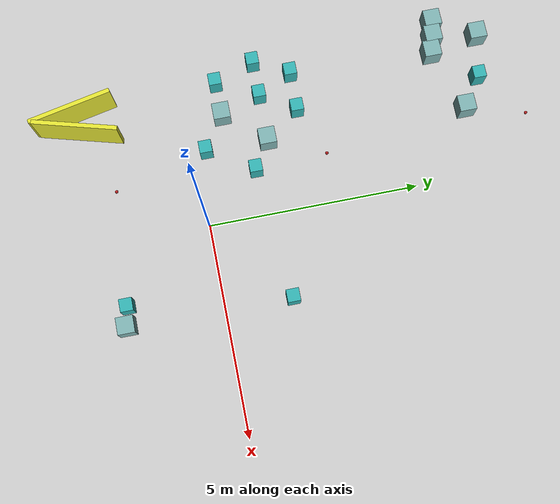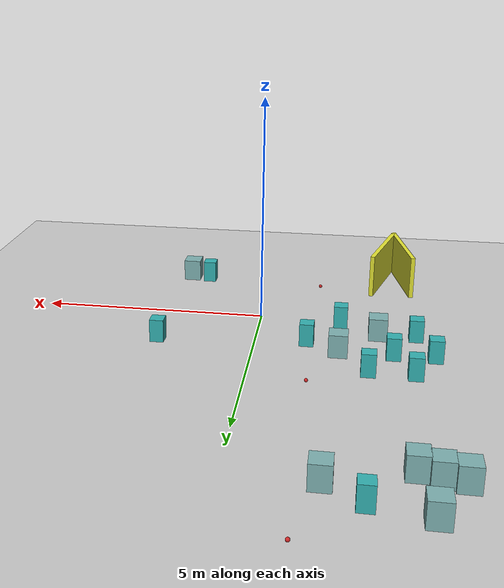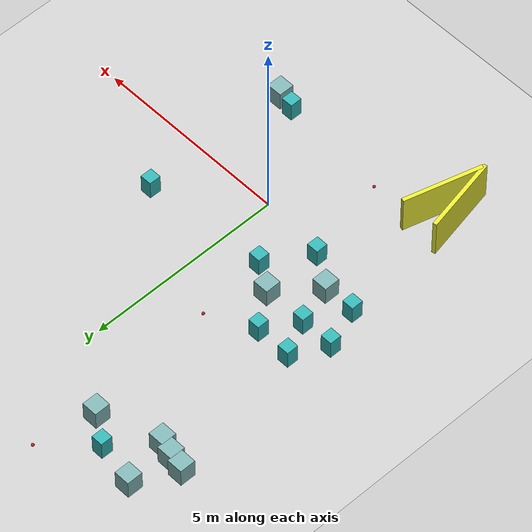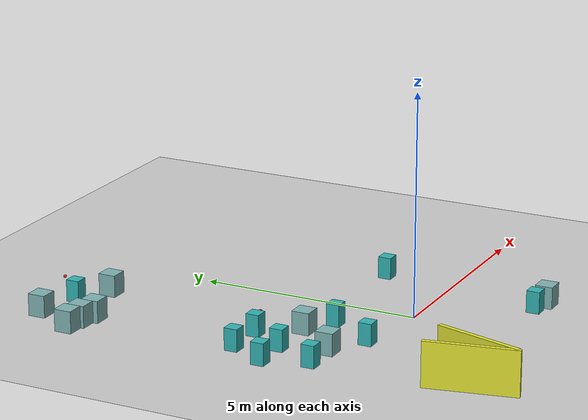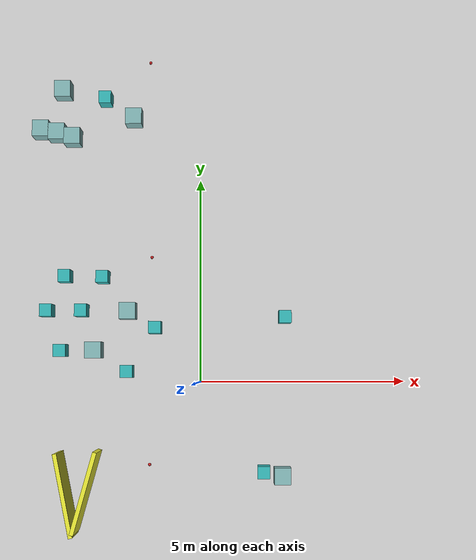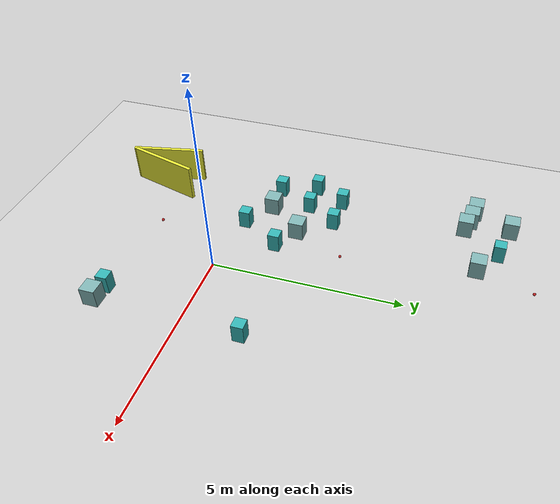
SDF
<sdf version="1.7">
 <world name="default">
  <model name="ground_plane">
   <static>1</static>
   <link name="link">
    <collision name="collision">
     <geometry><plane><normal>0 0 1</normal><size>100 100</size></plane></geometry>
     <surface><friction><ode><mu>100</mu><mu2>50</mu2></ode></friction></surface>
    </collision>
    <visual name="visual">
     <cast_shadows>0</cast_shadows>
     <geometry><plane><normal>0 0 1</normal><size>100 100</size></plane></geometry>
     <material>
      <script><uri>file://media/materials/scripts/gazebo.material</uri><name>Gazebo/Grey</name></script>
     </material>
    </visual>
   </link>
  </model>
  <model name="fl4sr_real_arena_8_target">
   <model name="target_ball_3">
    <link name="link">
     <pose>0 0 0.0375 0 -0 0</pose>
     <inertial>
      <mass>0.1467</mass>
      <inertia>
       <ixx>8.25187e-05</ixx>
       <ixy>0</ixy>
       <ixz>0</ixz>
       <iyy>8.25187e-05</iyy>
       <iyz>0</iyz>
       <izz>8.25187e-05</izz>
      </inertia>
     </inertial>
     <velocity_decay><linear>0</linear><angular>0.005</angular></velocity_decay>
     <visual name="visual">
      <geometry><sphere><radius>0.0375</radius></sphere></geometry>
      <material>
       <script><uri>file://media/materials/scripts/gazebo.material</uri><name>Gazebo/Red</name></script>
       <shader type="pixel"/>
      </material>
     </visual>
     <collision name="collision">
      <geometry><sphere><radius>0.0375</radius></sphere></geometry>
      <surface>
       <friction>
        <ode><mu>1</mu><mu2>1</mu2><fdir1>0 0 0</fdir1><slip1>0</slip1><slip2>0</slip2></ode>
        <torsional>
         <coefficient>1</coefficient>
         <patch_radius>0</patch_radius>
         <surface_radius>0.01</surface_radius>
         <use_patch_radius>0</use_patch_radius>
         <ode><slip>0</slip></ode>
        </torsional>
       </friction>
       <bounce><restitution_coefficient>0</restitution_coefficient><threshold>1e+06</threshold></bounce>
       <contact>
        <collide_without_contact>0</collide_without_contact>
        <collide_without_contact_bitmask>1</collide_without_contact_bitmask>
        <collide_bitmask>1</collide_bitmask>
        <ode>
         <soft_cfm>0</soft_cfm>
         <soft_erp>0.2</soft_erp>
         <kp>100000</kp>
         <kd>100</kd>
         <max_vel>100</max_vel>
         <min_depth>0.001</min_depth>
        </ode>
        <bullet>
         <split_impulse>1</split_impulse>
         <split_impulse_penetration_threshold>-0.01</split_impulse_penetration_threshold>
         <soft_cfm>0</soft_cfm>
         <soft_erp>0.2</soft_erp>
         <kp>100000</kp>
         <kd>100</kd>
        </bullet>
       </contact>
      </surface>
     </collision>
    </link>
    <static>0</static>
    <pose>-2.96569 7.16935 0 0 -0 0</pose>
   </model>
   <model name="target_ball_4">
    <link name="link">
     <pose>0 0 0.0375 0 -0 0</pose>
     <inertial>
      <mass>0.1467</mass>
      <inertia>
       <ixx>8.25187e-05</ixx>
       <ixy>0</ixy>
       <ixz>0</ixz>
       <iyy>8.25187e-05</iyy>
       <iyz>0</iyz>
       <izz>8.25187e-05</izz>
      </inertia>
     </inertial>
     <velocity_decay><linear>0</linear><angular>0.005</angular></velocity_decay>
     <visual name="visual">
      <geometry><sphere><radius>0.0375</radius></sphere></geometry>
      <material>
       <script><uri>file://media/materials/scripts/gazebo.material</uri><name>Gazebo/Red</name></script>
       <shader type="pixel"/>
      </material>
     </visual>
     <collision name="collision">
      <geometry><sphere><radius>0.0375</radius></sphere></geometry>
      <surface>
       <friction>
        <ode><mu>1</mu><mu2>1</mu2><fdir1>0 0 0</fdir1><slip1>0</slip1><slip2>0</slip2></ode>
        <torsional>
         <coefficient>1</coefficient>
         <patch_radius>0</patch_radius>
         <surface_radius>0.01</surface_radius>
         <use_patch_radius>0</use_patch_radius>
         <ode><slip>0</slip></ode>
        </torsional>
       </friction>
       <bounce><restitution_coefficient>0</restitution_coefficient><threshold>1e+06</threshold></bounce>
       <contact>
        <collide_without_contact>0</collide_without_contact>
        <collide_without_contact_bitmask>1</collide_without_contact_bitmask>
        <collide_bitmask>1</collide_bitmask>
        <ode>
         <soft_cfm>0</soft_cfm>
         <soft_erp>0.2</soft_erp>
         <kp>100000</kp>
         <kd>100</kd>
         <max_vel>100</max_vel>
         <min_depth>0.001</min_depth>
        </ode>
        <bullet>
         <split_impulse>1</split_impulse>
         <split_impulse_penetration_threshold>-0.01</split_impulse_penetration_threshold>
         <soft_cfm>0</soft_cfm>
         <soft_erp>0.2</soft_erp>
         <kp>100000</kp>
         <kd>100</kd>
        </bullet>
       </contact>
      </surface>
     </collision>
    </link>
    <static>0</static>
    <pose>-2.9061 2.23917 0 0 -0 0</pose>
   </model>
   <model name="target_ball_5">
    <link name="link">
     <pose>0 0 0.0375 0 -0 0</pose>
     <inertial>
      <mass>0.1467</mass>
      <inertia>
       <ixx>8.25187e-05</ixx>
       <ixy>0</ixy>
       <ixz>0</ixz>
       <iyy>8.25187e-05</iyy>
       <iyz>0</iyz>
       <izz>8.25187e-05</izz>
      </inertia>
     </inertial>
     <velocity_decay><linear>0</linear><angular>0.005</angular></velocity_decay>
     <visual name="visual">
      <geometry><sphere><radius>0.0375</radius></sphere></geometry>
      <material>
       <script><uri>file://media/materials/scripts/gazebo.material</uri><name>Gazebo/Red</name></script>
       <shader type="pixel"/>
      </material>
     </visual>
     <collision name="collision">
      <geometry><sphere><radius>0.0375</radius></sphere></geometry>
      <surface>
       <friction>
        <ode><mu>1</mu><mu2>1</mu2><fdir1>0 0 0</fdir1><slip1>0</slip1><slip2>0</slip2></ode>
        <torsional>
         <coefficient>1</coefficient>
         <patch_radius>0</patch_radius>
         <surface_radius>0.01</surface_radius>
         <use_patch_radius>0</use_patch_radius>
         <ode><slip>0</slip></ode>
        </torsional>
       </friction>
       <bounce><restitution_coefficient>0</restitution_coefficient><threshold>1e+06</threshold></bounce>
       <contact>
        <collide_without_contact>0</collide_without_contact>
        <collide_without_contact_bitmask>1</collide_without_contact_bitmask>
        <collide_bitmask>1</collide_bitmask>
        <ode>
         <soft_cfm>0</soft_cfm>
         <soft_erp>0.2</soft_erp>
         <kp>100000</kp>
         <kd>100</kd>
         <max_vel>100</max_vel>
         <min_depth>0.001</min_depth>
        </ode>
        <bullet>
         <split_impulse>1</split_impulse>
         <split_impulse_penetration_threshold>-0.01</split_impulse_penetration_threshold>
         <soft_cfm>0</soft_cfm>
         <soft_erp>0.2</soft_erp>
         <kp>100000</kp>
         <kd>100</kd>
        </bullet>
       </contact>
      </surface>
     </collision>
    </link>
    <static>0</static>
    <pose>-2.93744 -2.85263 0 0 -0 0</pose>
   </model>
   <static>0</static>
   <pose>1.69407 0.837481 0 0 -0 0</pose>
  </model>
  <model name="unit_box_0.4_clone_2">
   <link name="link">
    <inertial>
     <mass>1</mass>
     <inertia>
      <ixx>0.166667</ixx>
      <ixy>0</ixy>
      <ixz>0</ixz>
      <iyy>0.166667</iyy>
      <iyz>0</iyz>
      <izz>0.166667</izz>
     </inertia>
    </inertial>
    <visual name="visual">
     <geometry><box><size>0.4 0.4 0.5</size></box></geometry>
     <material>
      <script><name>Gazebo/Grey</name><uri>file://media/materials/scripts/gazebo.material</uri></script>
      <shader type="pixel"><normal_map>__default__</normal_map></shader>
      <ambient>0.7 0.8 0.4 1</ambient>
      <diffuse>0.5 0.7 0.7 1</diffuse>
      <specular>0.01 0.01 0.01 1</specular>
      <emissive>0 0 0 1</emissive>
     </material>
    </visual>
    <collision name="collision">
     <geometry><box><size>0.4 0.4 0.5</size></box></geometry>
     <surface>
      <friction>
       <ode><mu>1</mu><mu2>1</mu2><fdir1>0 0 0</fdir1><slip1>0</slip1><slip2>0</slip2></ode>
       <torsional>
        <coefficient>1</coefficient>
        <patch_radius>0</patch_radius>
        <surface_radius>0</surface_radius>
        <use_patch_radius>1</use_patch_radius>
        <ode><slip>0</slip></ode>
       </torsional>
      </friction>
      <bounce><restitution_coefficient>0</restitution_coefficient><threshold>1e+06</threshold></bounce>
      <contact>
       <collide_without_contact>0</collide_without_contact>
       <collide_without_contact_bitmask>1</collide_without_contact_bitmask>
       <collide_bitmask>1</collide_bitmask>
       <ode>
        <soft_cfm>0</soft_cfm>
        <soft_erp>0.2</soft_erp>
        <kp>1e+13</kp>
        <kd>1</kd>
        <max_vel>0.01</max_vel>
        <min_depth>0</min_depth>
       </ode>
       <bullet>
        <split_impulse>1</split_impulse>
        <split_impulse_penetration_threshold>-0.01</split_impulse_penetration_threshold>
        <soft_cfm>0</soft_cfm>
        <soft_erp>0.2</soft_erp>
        <kp>1e+13</kp>
        <kd>1</kd>
       </bullet>
      </contact>
     </surface>
    </collision>
   </link>
   <static>0</static>
   <pose>-1.78118 1.73401 0.25 0 -0 0</pose>
  </model>
  <model name="unit_box_0.4_clone_3">
   <link name="link">
    <inertial>
     <mass>1</mass>
     <inertia>
      <ixx>0.166667</ixx>
      <ixy>0</ixy>
      <ixz>0</ixz>
      <iyy>0.166667</iyy>
      <iyz>0</iyz>
      <izz>0.166667</izz>
     </inertia>
    </inertial>
    <visual name="visual">
     <geometry><box><size>0.4 0.4 0.5</size></box></geometry>
     <material>
      <script><name>Gazebo/Grey</name><uri>file://media/materials/scripts/gazebo.material</uri></script>
      <shader type="pixel"><normal_map>__default__</normal_map></shader>
      <ambient>0.7 0.8 0.4 1</ambient>
      <diffuse>0.5 0.7 0.7 1</diffuse>
      <specular>0.01 0.01 0.01 1</specular>
      <emissive>0 0 0 1</emissive>
     </material>
    </visual>
    <collision name="collision">
     <geometry><box><size>0.4 0.4 0.5</size></box></geometry>
     <surface>
      <friction>
       <ode><mu>1</mu><mu2>1</mu2><fdir1>0 0 0</fdir1><slip1>0</slip1><slip2>0</slip2></ode>
       <torsional>
        <coefficient>1</coefficient>
        <patch_radius>0</patch_radius>
        <surface_radius>0</surface_radius>
        <use_patch_radius>1</use_patch_radius>
        <ode><slip>0</slip></ode>
       </torsional>
      </friction>
      <bounce><restitution_coefficient>0</restitution_coefficient><threshold>1e+06</threshold></bounce>
      <contact>
       <collide_without_contact>0</collide_without_contact>
       <collide_without_contact_bitmask>1</collide_without_contact_bitmask>
       <collide_bitmask>1</collide_bitmask>
       <ode>
        <soft_cfm>0</soft_cfm>
        <soft_erp>0.2</soft_erp>
        <kp>1e+13</kp>
        <kd>1</kd>
        <max_vel>0.01</max_vel>
        <min_depth>0</min_depth>
       </ode>
       <bullet>
        <split_impulse>1</split_impulse>
        <split_impulse_penetration_threshold>-0.01</split_impulse_penetration_threshold>
        <soft_cfm>0</soft_cfm>
        <soft_erp>0.2</soft_erp>
        <kp>1e+13</kp>
        <kd>1</kd>
       </bullet>
      </contact>
     </surface>
    </collision>
   </link>
   <static>0</static>
   <pose>-2.60381 0.777397 0.25 0 -0 0</pose>
  </model>
  <model name="unit_box_0.3_0_clone_0">
   <model name="unit_box_0.3">
    <link name="link">
     <inertial>
      <mass>1</mass>
      <inertia>
       <ixx>0.166667</ixx>
       <ixy>0</ixy>
       <ixz>0</ixz>
       <iyy>0.166667</iyy>
       <iyz>0</iyz>
       <izz>0.166667</izz>
      </inertia>
     </inertial>
     <visual name="visual">
      <geometry><box><size>0.3 0.3 0.5</size></box></geometry>
      <material>
       <script><name>Gazebo/Grey</name><uri>file://media/materials/scripts/gazebo.material</uri></script>
       <shader type="pixel"><normal_map>__default__</normal_map></shader>
       <ambient>0.2 0.7 0.7 1</ambient>
       <diffuse>0.7 0.7 0.7 1</diffuse>
       <specular>0.01 0.01 0.01 1</specular>
       <emissive>0 0 0 1</emissive>
      </material>
     </visual>
     <collision name="collision">
      <geometry><box><size>0.3 0.3 0.5</size></box></geometry>
      <surface>
       <friction>
        <ode><mu>1</mu><mu2>1</mu2><fdir1>0 0 0</fdir1><slip1>0</slip1><slip2>0</slip2></ode>
        <torsional>
         <coefficient>1</coefficient>
         <patch_radius>0</patch_radius>
         <surface_radius>0</surface_radius>
         <use_patch_radius>1</use_patch_radius>
         <ode><slip>0</slip></ode>
        </torsional>
       </friction>
       <bounce><restitution_coefficient>0</restitution_coefficient><threshold>1e+06</threshold></bounce>
       <contact>
        <collide_without_contact>0</collide_without_contact>
        <collide_without_contact_bitmask>1</collide_without_contact_bitmask>
        <collide_bitmask>1</collide_bitmask>
        <ode>
         <soft_cfm>0</soft_cfm>
         <soft_erp>0.2</soft_erp>
         <kp>1e+13</kp>
         <kd>1</kd>
         <max_vel>0.01</max_vel>
         <min_depth>0</min_depth>
        </ode>
        <bullet>
         <split_impulse>1</split_impulse>
         <split_impulse_penetration_threshold>-0.01</split_impulse_penetration_threshold>
         <soft_cfm>0</soft_cfm>
         <soft_erp>0.2</soft_erp>
         <kp>1e+13</kp>
         <kd>1</kd>
        </bullet>
       </contact>
      </surface>
     </collision>
    </link>
    <static>0</static>
    <pose>1e-06 2e-06 0 0 -0 0</pose>
   </model>
   <static>1</static>
   <pose>2.06724 1.58536 0.25 -0 -0 -1e-06</pose>
  </model>
  <model name="unit_box_0.4_1">
   <model name="unit_box_0.4">
    <link name="link">
     <inertial>
      <mass>1</mass>
      <inertia>
       <ixx>0.166667</ixx>
       <ixy>0</ixy>
       <ixz>0</ixz>
       <iyy>0.166667</iyy>
       <iyz>0</iyz>
       <izz>0.166667</izz>
      </inertia>
     </inertial>
     <visual name="visual">
      <geometry><box><size>0.4 0.4 0.5</size></box></geometry>
      <material>
       <script><name>Gazebo/Grey</name><uri>file://media/materials/scripts/gazebo.material</uri></script>
       <shader type="pixel"><normal_map>__default__</normal_map></shader>
       <ambient>0.7 0.8 0.4 1</ambient>
       <diffuse>0.5 0.7 0.7 1</diffuse>
       <specular>0.01 0.01 0.01 1</specular>
       <emissive>0 0 0 1</emissive>
      </material>
     </visual>
     <collision name="collision">
      <geometry><box><size>0.4 0.4 0.5</size></box></geometry>
      <surface>
       <friction>
        <ode><mu>1</mu><mu2>1</mu2><fdir1>0 0 0</fdir1><slip1>0</slip1><slip2>0</slip2></ode>
        <torsional>
         <coefficient>1</coefficient>
         <patch_radius>0</patch_radius>
         <surface_radius>0</surface_radius>
         <use_patch_radius>1</use_patch_radius>
         <ode><slip>0</slip></ode>
        </torsional>
       </friction>
       <bounce><restitution_coefficient>0</restitution_coefficient><threshold>1e+06</threshold></bounce>
       <contact>
        <collide_without_contact>0</collide_without_contact>
        <collide_without_contact_bitmask>1</collide_without_contact_bitmask>
        <collide_bitmask>1</collide_bitmask>
        <ode>
         <soft_cfm>0</soft_cfm>
         <soft_erp>0.2</soft_erp>
         <kp>1e+13</kp>
         <kd>1</kd>
         <max_vel>0.01</max_vel>
         <min_depth>0</min_depth>
        </ode>
        <bullet>
         <split_impulse>1</split_impulse>
         <split_impulse_penetration_threshold>-0.01</split_impulse_penetration_threshold>
         <soft_cfm>0</soft_cfm>
         <soft_erp>0.2</soft_erp>
         <kp>1e+13</kp>
         <kd>1</kd>
        </bullet>
       </contact>
      </surface>
     </collision>
    </link>
    <static>0</static>
    <pose>-3e-06 2.5e-05 0 0 -0 0</pose>
   </model>
   <static>1</static>
   <pose>1.99158 -2.26116 0.25 0 -0 0</pose>
  </model>
  <model name="unit_box_0.3_0_clone_1">
   <model name="unit_box_0.3">
    <link name="link">
     <inertial>
      <mass>1</mass>
      <inertia>
       <ixx>0.166667</ixx>
       <ixy>0</ixy>
       <ixz>0</ixz>
       <iyy>0.166667</iyy>
       <iyz>0</iyz>
       <izz>0.166667</izz>
      </inertia>
     </inertial>
     <visual name="visual">
      <geometry><box><size>0.3 0.3 0.5</size></box></geometry>
      <material>
       <script><name>Gazebo/Grey</name><uri>file://media/materials/scripts/gazebo.material</uri></script>
       <shader type="pixel"><normal_map>__default__</normal_map></shader>
       <ambient>0.2 0.7 0.7 1</ambient>
       <diffuse>0.7 0.7 0.7 1</diffuse>
       <specular>0.01 0.01 0.01 1</specular>
       <emissive>0 0 0 1</emissive>
      </material>
     </visual>
     <collision name="collision">
      <geometry><box><size>0.3 0.3 0.5</size></box></geometry>
      <surface>
       <friction>
        <ode><mu>1</mu><mu2>1</mu2><fdir1>0 0 0</fdir1><slip1>0</slip1><slip2>0</slip2></ode>
        <torsional>
         <coefficient>1</coefficient>
         <patch_radius>0</patch_radius>
         <surface_radius>0</surface_radius>
         <use_patch_radius>1</use_patch_radius>
         <ode><slip>0</slip></ode>
        </torsional>
       </friction>
       <bounce><restitution_coefficient>0</restitution_coefficient><threshold>1e+06</threshold></bounce>
       <contact>
        <collide_without_contact>0</collide_without_contact>
        <collide_without_contact_bitmask>1</collide_without_contact_bitmask>
        <collide_bitmask>1</collide_bitmask>
        <ode>
         <soft_cfm>0</soft_cfm>
         <soft_erp>0.2</soft_erp>
         <kp>1e+13</kp>
         <kd>1</kd>
         <max_vel>0.01</max_vel>
         <min_depth>0</min_depth>
        </ode>
        <bullet>
         <split_impulse>1</split_impulse>
         <split_impulse_penetration_threshold>-0.01</split_impulse_penetration_threshold>
         <soft_cfm>0</soft_cfm>
         <soft_erp>0.2</soft_erp>
         <kp>1e+13</kp>
         <kd>1</kd>
        </bullet>
       </contact>
      </surface>
     </collision>
    </link>
    <static>0</static>
    <pose>1e-06 2e-06 0 0 -0 0</pose>
   </model>
   <static>1</static>
   <pose>1.54278 -2.17136 0.25 -0 -0 -1e-06</pose>
  </model>
  <model name="unit_box_0.3_0_clone_0_clone">
   <model name="unit_box_0.3">
    <link name="link">
     <inertial>
      <mass>1</mass>
      <inertia>
       <ixx>0.166667</ixx>
       <ixy>0</ixy>
       <ixz>0</ixz>
       <iyy>0.166667</iyy>
       <iyz>0</iyz>
       <izz>0.166667</izz>
      </inertia>
     </inertial>
     <visual name="visual">
      <geometry><box><size>0.3 0.3 0.5</size></box></geometry>
      <material>
       <script><name>Gazebo/Grey</name><uri>file://media/materials/scripts/gazebo.material</uri></script>
       <shader type="pixel"><normal_map>__default__</normal_map></shader>
       <ambient>0.2 0.7 0.7 1</ambient>
       <diffuse>0.7 0.7 0.7 1</diffuse>
       <specular>0.01 0.01 0.01 1</specular>
       <emissive>0 0 0 1</emissive>
      </material>
     </visual>
     <collision name="collision">
      <geometry><box><size>0.3 0.3 0.5</size></box></geometry>
      <surface>
       <friction>
        <ode><mu>1</mu><mu2>1</mu2><fdir1>0 0 0</fdir1><slip1>0</slip1><slip2>0</slip2></ode>
        <torsional>
         <coefficient>1</coefficient>
         <patch_radius>0</patch_radius>
         <surface_radius>0</surface_radius>
         <use_patch_radius>1</use_patch_radius>
         <ode><slip>0</slip></ode>
        </torsional>
       </friction>
       <bounce><restitution_coefficient>0</restitution_coefficient><threshold>1e+06</threshold></bounce>
       <contact>
        <collide_without_contact>0</collide_without_contact>
        <collide_without_contact_bitmask>1</collide_without_contact_bitmask>
        <collide_bitmask>1</collide_bitmask>
        <ode>
         <soft_cfm>0</soft_cfm>
         <soft_erp>0.2</soft_erp>
         <kp>1e+13</kp>
         <kd>1</kd>
         <max_vel>0.01</max_vel>
         <min_depth>0</min_depth>
        </ode>
        <bullet>
         <split_impulse>1</split_impulse>
         <split_impulse_penetration_threshold>-0.01</split_impulse_penetration_threshold>
         <soft_cfm>0</soft_cfm>
         <soft_erp>0.2</soft_erp>
         <kp>1e+13</kp>
         <kd>1</kd>
        </bullet>
       </contact>
      </surface>
     </collision>
    </link>
    <static>0</static>
    <pose>1e-06 2e-06 0 0 -0 0</pose>
   </model>
   <static>1</static>
   <pose>-2.36321 7.02551 0.25 0 0 -1e-06</pose>
  </model>
  <model name="unit_box_0.4_1_clone_0_clone">
   <model name="unit_box_0.4">
    <link name="link">
     <inertial>
      <mass>1</mass>
      <inertia>
       <ixx>0.166667</ixx>
       <ixy>0</ixy>
       <ixz>0</ixz>
       <iyy>0.166667</iyy>
       <iyz>0</iyz>
       <izz>0.166667</izz>
      </inertia>
     </inertial>
     <visual name="visual">
      <geometry><box><size>0.4 0.4 0.5</size></box></geometry>
      <material>
       <script><name>Gazebo/Grey</name><uri>file://media/materials/scripts/gazebo.material</uri></script>
       <shader type="pixel"><normal_map>__default__</normal_map></shader>
       <ambient>0.7 0.8 0.4 1</ambient>
       <diffuse>0.5 0.7 0.7 1</diffuse>
       <specular>0.01 0.01 0.01 1</specular>
       <emissive>0 0 0 1</emissive>
      </material>
     </visual>
     <collision name="collision">
      <geometry><box><size>0.4 0.4 0.5</size></box></geometry>
      <surface>
       <friction>
        <ode><mu>1</mu><mu2>1</mu2><fdir1>0 0 0</fdir1><slip1>0</slip1><slip2>0</slip2></ode>
        <torsional>
         <coefficient>1</coefficient>
         <patch_radius>0</patch_radius>
         <surface_radius>0</surface_radius>
         <use_patch_radius>1</use_patch_radius>
         <ode><slip>0</slip></ode>
        </torsional>
       </friction>
       <bounce><restitution_coefficient>0</restitution_coefficient><threshold>1e+06</threshold></bounce>
       <contact>
        <collide_without_contact>0</collide_without_contact>
        <collide_without_contact_bitmask>1</collide_without_contact_bitmask>
        <collide_bitmask>1</collide_bitmask>
        <ode>
         <soft_cfm>0</soft_cfm>
         <soft_erp>0.2</soft_erp>
         <kp>1e+13</kp>
         <kd>1</kd>
         <max_vel>0.01</max_vel>
         <min_depth>0</min_depth>
        </ode>
        <bullet>
         <split_impulse>1</split_impulse>
         <split_impulse_penetration_threshold>-0.01</split_impulse_penetration_threshold>
         <soft_cfm>0</soft_cfm>
         <soft_erp>0.2</soft_erp>
         <kp>1e+13</kp>
         <kd>1</kd>
        </bullet>
       </contact>
      </surface>
     </collision>
    </link>
    <static>0</static>
    <pose>-3e-06 2.5e-05 0 0 -0 0</pose>
   </model>
   <static>1</static>
   <pose>-3.95099 6.24383 0.25 0 -0 0</pose>
  </model>
  <model name="unit_box_0.4_1_clone_0_clone_0">
   <model name="unit_box_0.4">
    <link name="link">
     <inertial>
      <mass>1</mass>
      <inertia>
       <ixx>0.166667</ixx>
       <ixy>0</ixy>
       <ixz>0</ixz>
       <iyy>0.166667</iyy>
       <iyz>0</iyz>
       <izz>0.166667</izz>
      </inertia>
     </inertial>
     <visual name="visual">
      <geometry><box><size>0.4 0.4 0.5</size></box></geometry>
      <material>
       <script><name>Gazebo/Grey</name><uri>file://media/materials/scripts/gazebo.material</uri></script>
       <shader type="pixel"><normal_map>__default__</normal_map></shader>
       <ambient>0.7 0.8 0.4 1</ambient>
       <diffuse>0.5 0.7 0.7 1</diffuse>
       <specular>0.01 0.01 0.01 1</specular>
       <emissive>0 0 0 1</emissive>
      </material>
     </visual>
     <collision name="collision">
      <geometry><box><size>0.4 0.4 0.5</size></box></geometry>
      <surface>
       <friction>
        <ode><mu>1</mu><mu2>1</mu2><fdir1>0 0 0</fdir1><slip1>0</slip1><slip2>0</slip2></ode>
        <torsional>
         <coefficient>1</coefficient>
         <patch_radius>0</patch_radius>
         <surface_radius>0</surface_radius>
         <use_patch_radius>1</use_patch_radius>
         <ode><slip>0</slip></ode>
        </torsional>
       </friction>
       <bounce><restitution_coefficient>0</restitution_coefficient><threshold>1e+06</threshold></bounce>
       <contact>
        <collide_without_contact>0</collide_without_contact>
        <collide_without_contact_bitmask>1</collide_without_contact_bitmask>
        <collide_bitmask>1</collide_bitmask>
        <ode>
         <soft_cfm>0</soft_cfm>
         <soft_erp>0.2</soft_erp>
         <kp>1e+13</kp>
         <kd>1</kd>
         <max_vel>0.01</max_vel>
         <min_depth>0</min_depth>
        </ode>
        <bullet>
         <split_impulse>1</split_impulse>
         <split_impulse_penetration_threshold>-0.01</split_impulse_penetration_threshold>
         <soft_cfm>0</soft_cfm>
         <soft_erp>0.2</soft_erp>
         <kp>1e+13</kp>
         <kd>1</kd>
        </bullet>
       </contact>
      </surface>
     </collision>
    </link>
    <static>0</static>
    <pose>-3e-06 2.5e-05 0 0 -0 0</pose>
   </model>
   <static>1</static>
   <pose>-3.56018 6.17058 0.25 -0 -0 -0</pose>
  </model>
  <model name="unit_box_0.4_1_clone_0_clone_1">
   <model name="unit_box_0.4">
    <link name="link">
     <inertial>
      <mass>1</mass>
      <inertia>
       <ixx>0.166667</ixx>
       <ixy>0</ixy>
       <ixz>0</ixz>
       <iyy>0.166667</iyy>
       <iyz>0</iyz>
       <izz>0.166667</izz>
      </inertia>
     </inertial>
     <visual name="visual">
      <geometry><box><size>0.4 0.4 0.5</size></box></geometry>
      <material>
       <script><name>Gazebo/Grey</name><uri>file://media/materials/scripts/gazebo.material</uri></script>
       <shader type="pixel"><normal_map>__default__</normal_map></shader>
       <ambient>0.7 0.8 0.4 1</ambient>
       <diffuse>0.5 0.7 0.7 1</diffuse>
       <specular>0.01 0.01 0.01 1</specular>
       <emissive>0 0 0 1</emissive>
      </material>
     </visual>
     <collision name="collision">
      <geometry><box><size>0.4 0.4 0.5</size></box></geometry>
      <surface>
       <friction>
        <ode><mu>1</mu><mu2>1</mu2><fdir1>0 0 0</fdir1><slip1>0</slip1><slip2>0</slip2></ode>
        <torsional>
         <coefficient>1</coefficient>
         <patch_radius>0</patch_radius>
         <surface_radius>0</surface_radius>
         <use_patch_radius>1</use_patch_radius>
         <ode><slip>0</slip></ode>
        </torsional>
       </friction>
       <bounce><restitution_coefficient>0</restitution_coefficient><threshold>1e+06</threshold></bounce>
       <contact>
        <collide_without_contact>0</collide_without_contact>
        <collide_without_contact_bitmask>1</collide_without_contact_bitmask>
        <collide_bitmask>1</collide_bitmask>
        <ode>
         <soft_cfm>0</soft_cfm>
         <soft_erp>0.2</soft_erp>
         <kp>1e+13</kp>
         <kd>1</kd>
         <max_vel>0.01</max_vel>
         <min_depth>0</min_depth>
        </ode>
        <bullet>
         <split_impulse>1</split_impulse>
         <split_impulse_penetration_threshold>-0.01</split_impulse_penetration_threshold>
         <soft_cfm>0</soft_cfm>
         <soft_erp>0.2</soft_erp>
         <kp>1e+13</kp>
         <kd>1</kd>
        </bullet>
       </contact>
      </surface>
     </collision>
    </link>
    <static>0</static>
    <pose>-3e-06 2.5e-05 0 0 -0 0</pose>
   </model>
   <static>1</static>
   <pose>-3.17293 6.05879 0.25 -0 -0 -0</pose>
  </model>
  <model name="unit_box_0.4_1_clone_0_clone_2">
   <model name="unit_box_0.4">
    <link name="link">
     <inertial>
      <mass>1</mass>
      <inertia>
       <ixx>0.166667</ixx>
       <ixy>0</ixy>
       <ixz>0</ixz>
       <iyy>0.166667</iyy>
       <iyz>0</iyz>
       <izz>0.166667</izz>
      </inertia>
     </inertial>
     <visual name="visual">
      <geometry><box><size>0.4 0.4 0.5</size></box></geometry>
      <material>
       <script><name>Gazebo/Grey</name><uri>file://media/materials/scripts/gazebo.material</uri></script>
       <shader type="pixel"><normal_map>__default__</normal_map></shader>
       <ambient>0.7 0.8 0.4 1</ambient>
       <diffuse>0.5 0.7 0.7 1</diffuse>
       <specular>0.01 0.01 0.01 1</specular>
       <emissive>0 0 0 1</emissive>
      </material>
     </visual>
     <collision name="collision">
      <geometry><box><size>0.4 0.4 0.5</size></box></geometry>
      <surface>
       <friction>
        <ode><mu>1</mu><mu2>1</mu2><fdir1>0 0 0</fdir1><slip1>0</slip1><slip2>0</slip2></ode>
        <torsional>
         <coefficient>1</coefficient>
         <patch_radius>0</patch_radius>
         <surface_radius>0</surface_radius>
         <use_patch_radius>1</use_patch_radius>
         <ode><slip>0</slip></ode>
        </torsional>
       </friction>
       <bounce><restitution_coefficient>0</restitution_coefficient><threshold>1e+06</threshold></bounce>
       <contact>
        <collide_without_contact>0</collide_without_contact>
        <collide_without_contact_bitmask>1</collide_without_contact_bitmask>
        <collide_bitmask>1</collide_bitmask>
        <ode>
         <soft_cfm>0</soft_cfm>
         <soft_erp>0.2</soft_erp>
         <kp>1e+13</kp>
         <kd>1</kd>
         <max_vel>0.01</max_vel>
         <min_depth>0</min_depth>
        </ode>
        <bullet>
         <split_impulse>1</split_impulse>
         <split_impulse_penetration_threshold>-0.01</split_impulse_penetration_threshold>
         <soft_cfm>0</soft_cfm>
         <soft_erp>0.2</soft_erp>
         <kp>1e+13</kp>
         <kd>1</kd>
        </bullet>
       </contact>
      </surface>
     </collision>
    </link>
    <static>0</static>
    <pose>-3e-06 2.5e-05 0 0 -0 0</pose>
   </model>
   <static>1</static>
   <pose>-1.65683 6.54924 0.25 -0 -0 -0</pose>
  </model>
  <model name="unit_box_0.4_1_clone_0_clone_3">
   <model name="unit_box_0.4">
    <link name="link">
     <inertial>
      <mass>1</mass>
      <inertia>
       <ixx>0.166667</ixx>
       <ixy>0</ixy>
       <ixz>0</ixz>
       <iyy>0.166667</iyy>
       <iyz>0</iyz>
       <izz>0.166667</izz>
      </inertia>
     </inertial>
     <visual name="visual">
      <geometry><box><size>0.4 0.4 0.5</size></box></geometry>
      <material>
       <script><name>Gazebo/Grey</name><uri>file://media/materials/scripts/gazebo.material</uri></script>
       <shader type="pixel"><normal_map>__default__</normal_map></shader>
       <ambient>0.7 0.8 0.4 1</ambient>
       <diffuse>0.5 0.7 0.7 1</diffuse>
       <specular>0.01 0.01 0.01 1</specular>
       <emissive>0 0 0 1</emissive>
      </material>
     </visual>
     <collision name="collision">
      <geometry><box><size>0.4 0.4 0.5</size></box></geometry>
      <surface>
       <friction>
        <ode><mu>1</mu><mu2>1</mu2><fdir1>0 0 0</fdir1><slip1>0</slip1><slip2>0</slip2></ode>
        <torsional>
         <coefficient>1</coefficient>
         <patch_radius>0</patch_radius>
         <surface_radius>0</surface_radius>
         <use_patch_radius>1</use_patch_radius>
         <ode><slip>0</slip></ode>
        </torsional>
       </friction>
       <bounce><restitution_coefficient>0</restitution_coefficient><threshold>1e+06</threshold></bounce>
       <contact>
        <collide_without_contact>0</collide_without_contact>
        <collide_without_contact_bitmask>1</collide_without_contact_bitmask>
        <collide_bitmask>1</collide_bitmask>
        <ode>
         <soft_cfm>0</soft_cfm>
         <soft_erp>0.2</soft_erp>
         <kp>1e+13</kp>
         <kd>1</kd>
         <max_vel>0.01</max_vel>
         <min_depth>0</min_depth>
        </ode>
        <bullet>
         <split_impulse>1</split_impulse>
         <split_impulse_penetration_threshold>-0.01</split_impulse_penetration_threshold>
         <soft_cfm>0</soft_cfm>
         <soft_erp>0.2</soft_erp>
         <kp>1e+13</kp>
         <kd>1</kd>
        </bullet>
       </contact>
      </surface>
     </collision>
    </link>
    <static>0</static>
    <pose>-3e-06 2.5e-05 0 0 -0 0</pose>
   </model>
   <static>1</static>
   <pose>-3.4182 7.2404 0.25 -0 -0 -0</pose>
  </model>
  <model name="unit_box_0.3_0_clone_0_clone_clone">
   <model name="unit_box_0.3">
    <link name="link">
     <inertial>
      <mass>1</mass>
      <inertia>
       <ixx>0.166667</ixx>
       <ixy>0</ixy>
       <ixz>0</ixz>
       <iyy>0.166667</iyy>
       <iyz>0</iyz>
       <izz>0.166667</izz>
      </inertia>
     </inertial>
     <visual name="visual">
      <geometry><box><size>0.3 0.3 0.5</size></box></geometry>
      <material>
       <script><name>Gazebo/Grey</name><uri>file://media/materials/scripts/gazebo.material</uri></script>
       <shader type="pixel"><normal_map>__default__</normal_map></shader>
       <ambient>0.2 0.7 0.7 1</ambient>
       <diffuse>0.7 0.7 0.7 1</diffuse>
       <specular>0.01 0.01 0.01 1</specular>
       <emissive>0 0 0 1</emissive>
      </material>
     </visual>
     <collision name="collision">
      <geometry><box><size>0.3 0.3 0.5</size></box></geometry>
      <surface>
       <friction>
        <ode><mu>1</mu><mu2>1</mu2><fdir1>0 0 0</fdir1><slip1>0</slip1><slip2>0</slip2></ode>
        <torsional>
         <coefficient>1</coefficient>
         <patch_radius>0</patch_radius>
         <surface_radius>0</surface_radius>
         <use_patch_radius>1</use_patch_radius>
         <ode><slip>0</slip></ode>
        </torsional>
       </friction>
       <bounce><restitution_coefficient>0</restitution_coefficient><threshold>1e+06</threshold></bounce>
       <contact>
        <collide_without_contact>0</collide_without_contact>
        <collide_without_contact_bitmask>1</collide_without_contact_bitmask>
        <collide_bitmask>1</collide_bitmask>
        <ode>
         <soft_cfm>0</soft_cfm>
         <soft_erp>0.2</soft_erp>
         <kp>1e+13</kp>
         <kd>1</kd>
         <max_vel>0.01</max_vel>
         <min_depth>0</min_depth>
        </ode>
        <bullet>
         <split_impulse>1</split_impulse>
         <split_impulse_penetration_threshold>-0.01</split_impulse_penetration_threshold>
         <soft_cfm>0</soft_cfm>
         <soft_erp>0.2</soft_erp>
         <kp>1e+13</kp>
         <kd>1</kd>
        </bullet>
       </contact>
      </surface>
     </collision>
    </link>
    <static>0</static>
    <pose>1e-06 2e-06 0 0 -0 0</pose>
   </model>
   <static>1</static>
   <pose>-2.91469 1.74987 0.25 0 0 -1e-06</pose>
  </model>
  <model name="unit_box_0.3_0_clone_0_clone_clone_0">
   <model name="unit_box_0.3">
    <link name="link">
     <inertial>
      <mass>1</mass>
      <inertia>
       <ixx>0.166667</ixx>
       <ixy>0</ixy>
       <ixz>0</ixz>
       <iyy>0.166667</iyy>
       <iyz>0</iyz>
       <izz>0.166667</izz>
      </inertia>
     </inertial>
     <visual name="visual">
      <geometry><box><size>0.3 0.3 0.5</size></box></geometry>
      <material>
       <script><name>Gazebo/Grey</name><uri>file://media/materials/scripts/gazebo.material</uri></script>
       <shader type="pixel"><normal_map>__default__</normal_map></shader>
       <ambient>0.2 0.7 0.7 1</ambient>
       <diffuse>0.7 0.7 0.7 1</diffuse>
       <specular>0.01 0.01 0.01 1</specular>
       <emissive>0 0 0 1</emissive>
      </material>
     </visual>
     <collision name="collision">
      <geometry><box><size>0.3 0.3 0.5</size></box></geometry>
      <surface>
       <friction>
        <ode><mu>1</mu><mu2>1</mu2><fdir1>0 0 0</fdir1><slip1>0</slip1><slip2>0</slip2></ode>
        <torsional>
         <coefficient>1</coefficient>
         <patch_radius>0</patch_radius>
         <surface_radius>0</surface_radius>
         <use_patch_radius>1</use_patch_radius>
         <ode><slip>0</slip></ode>
        </torsional>
       </friction>
       <bounce><restitution_coefficient>0</restitution_coefficient><threshold>1e+06</threshold></bounce>
       <contact>
        <collide_without_contact>0</collide_without_contact>
        <collide_without_contact_bitmask>1</collide_without_contact_bitmask>
        <collide_bitmask>1</collide_bitmask>
        <ode>
         <soft_cfm>0</soft_cfm>
         <soft_erp>0.2</soft_erp>
         <kp>1e+13</kp>
         <kd>1</kd>
         <max_vel>0.01</max_vel>
         <min_depth>0</min_depth>
        </ode>
        <bullet>
         <split_impulse>1</split_impulse>
         <split_impulse_penetration_threshold>-0.01</split_impulse_penetration_threshold>
         <soft_cfm>0</soft_cfm>
         <soft_erp>0.2</soft_erp>
         <kp>1e+13</kp>
         <kd>1</kd>
        </bullet>
       </contact>
      </surface>
     </collision>
    </link>
    <static>0</static>
    <pose>1e-06 2e-06 0 0 -0 0</pose>
   </model>
   <static>1</static>
   <pose>-3.76383 1.74621 0.25 0 0 -1e-06</pose>
  </model>
  <model name="unit_box_0.3_0_clone_0_clone_clone_2">
   <model name="unit_box_0.3">
    <link name="link">
     <inertial>
      <mass>1</mass>
      <inertia>
       <ixx>0.166667</ixx>
       <ixy>0</ixy>
       <ixz>0</ixz>
       <iyy>0.166667</iyy>
       <iyz>0</iyz>
       <izz>0.166667</izz>
      </inertia>
     </inertial>
     <visual name="visual">
      <geometry><box><size>0.3 0.3 0.5</size></box></geometry>
      <material>
       <script><name>Gazebo/Grey</name><uri>file://media/materials/scripts/gazebo.material</uri></script>
       <shader type="pixel"><normal_map>__default__</normal_map></shader>
       <ambient>0.2 0.7 0.7 1</ambient>
       <diffuse>0.7 0.7 0.7 1</diffuse>
       <specular>0.01 0.01 0.01 1</specular>
       <emissive>0 0 0 1</emissive>
      </material>
     </visual>
     <collision name="collision">
      <geometry><box><size>0.3 0.3 0.5</size></box></geometry>
      <surface>
       <friction>
        <ode><mu>1</mu><mu2>1</mu2><fdir1>0 0 0</fdir1><slip1>0</slip1><slip2>0</slip2></ode>
        <torsional>
         <coefficient>1</coefficient>
         <patch_radius>0</patch_radius>
         <surface_radius>0</surface_radius>
         <use_patch_radius>1</use_patch_radius>
         <ode><slip>0</slip></ode>
        </torsional>
       </friction>
       <bounce><restitution_coefficient>0</restitution_coefficient><threshold>1e+06</threshold></bounce>
       <contact>
        <collide_without_contact>0</collide_without_contact>
        <collide_without_contact_bitmask>1</collide_without_contact_bitmask>
        <collide_bitmask>1</collide_bitmask>
        <ode>
         <soft_cfm>0</soft_cfm>
         <soft_erp>0.2</soft_erp>
         <kp>1e+13</kp>
         <kd>1</kd>
         <max_vel>0.01</max_vel>
         <min_depth>0</min_depth>
        </ode>
        <bullet>
         <split_impulse>1</split_impulse>
         <split_impulse_penetration_threshold>-0.01</split_impulse_penetration_threshold>
         <soft_cfm>0</soft_cfm>
         <soft_erp>0.2</soft_erp>
         <kp>1e+13</kp>
         <kd>1</kd>
        </bullet>
       </contact>
      </surface>
     </collision>
    </link>
    <static>0</static>
    <pose>1e-06 2e-06 0 0 -0 0</pose>
   </model>
   <static>1</static>
   <pose>-3.41643 0.769206 0.25 0 -0 0</pose>
  </model>
  <model name="unit_box_0.3_0_clone_0_clone_clone_3">
   <model name="unit_box_0.3">
    <link name="link">
     <inertial>
      <mass>1</mass>
      <inertia>
       <ixx>0.166667</ixx>
       <ixy>0</ixy>
       <ixz>0</ixz>
       <iyy>0.166667</iyy>
       <iyz>0</iyz>
       <izz>0.166667</izz>
      </inertia>
     </inertial>
     <visual name="visual">
      <geometry><box><size>0.3 0.3 0.5</size></box></geometry>
      <material>
       <script><name>Gazebo/Grey</name><uri>file://media/materials/scripts/gazebo.material</uri></script>
       <shader type="pixel"><normal_map>__default__</normal_map></shader>
       <ambient>0.2 0.7 0.7 1</ambient>
       <diffuse>0.7 0.7 0.7 1</diffuse>
       <specular>0.01 0.01 0.01 1</specular>
       <emissive>0 0 0 1</emissive>
      </material>
     </visual>
     <collision name="collision">
      <geometry><box><size>0.3 0.3 0.5</size></box></geometry>
      <surface>
       <friction>
        <ode><mu>1</mu><mu2>1</mu2><fdir1>0 0 0</fdir1><slip1>0</slip1><slip2>0</slip2></ode>
        <torsional>
         <coefficient>1</coefficient>
         <patch_radius>0</patch_radius>
         <surface_radius>0</surface_radius>
         <use_patch_radius>1</use_patch_radius>
         <ode><slip>0</slip></ode>
        </torsional>
       </friction>
       <bounce><restitution_coefficient>0</restitution_coefficient><threshold>1e+06</threshold></bounce>
       <contact>
        <collide_without_contact>0</collide_without_contact>
        <collide_without_contact_bitmask>1</collide_without_contact_bitmask>
        <collide_bitmask>1</collide_bitmask>
        <ode>
         <soft_cfm>0</soft_cfm>
         <soft_erp>0.2</soft_erp>
         <kp>1e+13</kp>
         <kd>1</kd>
         <max_vel>0.01</max_vel>
         <min_depth>0</min_depth>
        </ode>
        <bullet>
         <split_impulse>1</split_impulse>
         <split_impulse_penetration_threshold>-0.01</split_impulse_penetration_threshold>
         <soft_cfm>0</soft_cfm>
         <soft_erp>0.2</soft_erp>
         <kp>1e+13</kp>
         <kd>1</kd>
        </bullet>
       </contact>
      </surface>
     </collision>
    </link>
    <static>0</static>
    <pose>1e-06 2e-06 0 0 -0 0</pose>
   </model>
   <static>1</static>
   <pose>-2.40094 2.57151 0.25 0 -0 0</pose>
  </model>
  <model name="unit_box_0.3_0_clone_0_clone_clone_4">
   <model name="unit_box_0.3">
    <link name="link">
     <inertial>
      <mass>1</mass>
      <inertia>
       <ixx>0.166667</ixx>
       <ixy>0</ixy>
       <ixz>0</ixz>
       <iyy>0.166667</iyy>
       <iyz>0</iyz>
       <izz>0.166667</izz>
      </inertia>
     </inertial>
     <visual name="visual">
      <geometry><box><size>0.3 0.3 0.5</size></box></geometry>
      <material>
       <script><name>Gazebo/Grey</name><uri>file://media/materials/scripts/gazebo.material</uri></script>
       <shader type="pixel"><normal_map>__default__</normal_map></shader>
       <ambient>0.2 0.7 0.7 1</ambient>
       <diffuse>0.7 0.7 0.7 1</diffuse>
       <specular>0.01 0.01 0.01 1</specular>
       <emissive>0 0 0 1</emissive>
      </material>
     </visual>
     <collision name="collision">
      <geometry><box><size>0.3 0.3 0.5</size></box></geometry>
      <surface>
       <friction>
        <ode><mu>1</mu><mu2>1</mu2><fdir1>0 0 0</fdir1><slip1>0</slip1><slip2>0</slip2></ode>
        <torsional>
         <coefficient>1</coefficient>
         <patch_radius>0</patch_radius>
         <surface_radius>0</surface_radius>
         <use_patch_radius>1</use_patch_radius>
         <ode><slip>0</slip></ode>
        </torsional>
       </friction>
       <bounce><restitution_coefficient>0</restitution_coefficient><threshold>1e+06</threshold></bounce>
       <contact>
        <collide_without_contact>0</collide_without_contact>
        <collide_without_contact_bitmask>1</collide_without_contact_bitmask>
        <collide_bitmask>1</collide_bitmask>
        <ode>
         <soft_cfm>0</soft_cfm>
         <soft_erp>0.2</soft_erp>
         <kp>1e+13</kp>
         <kd>1</kd>
         <max_vel>0.01</max_vel>
         <min_depth>0</min_depth>
        </ode>
        <bullet>
         <split_impulse>1</split_impulse>
         <split_impulse_penetration_threshold>-0.01</split_impulse_penetration_threshold>
         <soft_cfm>0</soft_cfm>
         <soft_erp>0.2</soft_erp>
         <kp>1e+13</kp>
         <kd>1</kd>
        </bullet>
       </contact>
      </surface>
     </collision>
    </link>
    <static>0</static>
    <pose>1e-06 2e-06 0 0 -0 0</pose>
   </model>
   <static>1</static>
   <pose>-3.32503 2.58979 0.25 0 0 -1e-06</pose>
  </model>
  <model name="unit_box_0.3_0_clone_0_clone_clone_5">
   <model name="unit_box_0.3">
    <link name="link">
     <inertial>
      <mass>1</mass>
      <inertia>
       <ixx>0.166667</ixx>
       <ixy>0</ixy>
       <ixz>0</ixz>
       <iyy>0.166667</iyy>
       <iyz>0</iyz>
       <izz>0.166667</izz>
      </inertia>
     </inertial>
     <visual name="visual">
      <geometry><box><size>0.3 0.3 0.5</size></box></geometry>
      <material>
       <script><name>Gazebo/Grey</name><uri>file://media/materials/scripts/gazebo.material</uri></script>
       <shader type="pixel"><normal_map>__default__</normal_map></shader>
       <ambient>0.2 0.7 0.7 1</ambient>
       <diffuse>0.7 0.7 0.7 1</diffuse>
       <specular>0.01 0.01 0.01 1</specular>
       <emissive>0 0 0 1</emissive>
      </material>
     </visual>
     <collision name="collision">
      <geometry><box><size>0.3 0.3 0.5</size></box></geometry>
      <surface>
       <friction>
        <ode><mu>1</mu><mu2>1</mu2><fdir1>0 0 0</fdir1><slip1>0</slip1><slip2>0</slip2></ode>
        <torsional>
         <coefficient>1</coefficient>
         <patch_radius>0</patch_radius>
         <surface_radius>0</surface_radius>
         <use_patch_radius>1</use_patch_radius>
         <ode><slip>0</slip></ode>
        </torsional>
       </friction>
       <bounce><restitution_coefficient>0</restitution_coefficient><threshold>1e+06</threshold></bounce>
       <contact>
        <collide_without_contact>0</collide_without_contact>
        <collide_without_contact_bitmask>1</collide_without_contact_bitmask>
        <collide_bitmask>1</collide_bitmask>
        <ode>
         <soft_cfm>0</soft_cfm>
         <soft_erp>0.2</soft_erp>
         <kp>1e+13</kp>
         <kd>1</kd>
         <max_vel>0.01</max_vel>
         <min_depth>0</min_depth>
        </ode>
        <bullet>
         <split_impulse>1</split_impulse>
         <split_impulse_penetration_threshold>-0.01</split_impulse_penetration_threshold>
         <soft_cfm>0</soft_cfm>
         <soft_erp>0.2</soft_erp>
         <kp>1e+13</kp>
         <kd>1</kd>
        </bullet>
       </contact>
      </surface>
     </collision>
    </link>
    <static>0</static>
    <pose>1e-06 2e-06 0 0 -0 0</pose>
   </model>
   <static>1</static>
   <pose>-1.1075 1.32736 0.25 -0 -0 -0.009334</pose>
  </model>
  <model name="unit_box_0.3_0_clone_0_clone_clone_6">
   <model name="unit_box_0.3">
    <link name="link">
     <inertial>
      <mass>1</mass>
      <inertia>
       <ixx>0.166667</ixx>
       <ixy>0</ixy>
       <ixz>0</ixz>
       <iyy>0.166667</iyy>
       <iyz>0</iyz>
       <izz>0.166667</izz>
      </inertia>
     </inertial>
     <visual name="visual">
      <geometry><box><size>0.3 0.3 0.5</size></box></geometry>
      <material>
       <script><name>Gazebo/Grey</name><uri>file://media/materials/scripts/gazebo.material</uri></script>
       <shader type="pixel"><normal_map>__default__</normal_map></shader>
       <ambient>0.2 0.7 0.7 1</ambient>
       <diffuse>0.7 0.7 0.7 1</diffuse>
       <specular>0.01 0.01 0.01 1</specular>
       <emissive>0 0 0 1</emissive>
      </material>
     </visual>
     <collision name="collision">
      <geometry><box><size>0.3 0.3 0.5</size></box></geometry>
      <surface>
       <friction>
        <ode><mu>1</mu><mu2>1</mu2><fdir1>0 0 0</fdir1><slip1>0</slip1><slip2>0</slip2></ode>
        <torsional>
         <coefficient>1</coefficient>
         <patch_radius>0</patch_radius>
         <surface_radius>0</surface_radius>
         <use_patch_radius>1</use_patch_radius>
         <ode><slip>0</slip></ode>
        </torsional>
       </friction>
       <bounce><restitution_coefficient>0</restitution_coefficient><threshold>1e+06</threshold></bounce>
       <contact>
        <collide_without_contact>0</collide_without_contact>
        <collide_without_contact_bitmask>1</collide_without_contact_bitmask>
        <collide_bitmask>1</collide_bitmask>
        <ode>
         <soft_cfm>0</soft_cfm>
         <soft_erp>0.2</soft_erp>
         <kp>1e+13</kp>
         <kd>1</kd>
         <max_vel>0.01</max_vel>
         <min_depth>0</min_depth>
        </ode>
        <bullet>
         <split_impulse>1</split_impulse>
         <split_impulse_penetration_threshold>-0.01</split_impulse_penetration_threshold>
         <soft_cfm>0</soft_cfm>
         <soft_erp>0.2</soft_erp>
         <kp>1e+13</kp>
         <kd>1</kd>
        </bullet>
       </contact>
      </surface>
     </collision>
    </link>
    <static>0</static>
    <pose>1e-06 2e-06 0 0 -0 0</pose>
   </model>
   <static>1</static>
   <pose>-1.79462 0.253541 0.25 0 0 -1e-06</pose>
  </model>
  <model name="wooden_wall_2_1_clone_clone_0">
   <link name="link_1">
    <inertial>
     <mass>1</mass>
     <inertia>
      <ixx>0.166667</ixx>
      <ixy>0</ixy>
      <ixz>0</ixz>
      <iyy>0.166667</iyy>
      <iyz>0</iyz>
      <izz>0.166667</izz>
     </inertia>
    </inertial>
    <visual name="visual">
     <geometry><box><size>2 0.1 1</size></box></geometry>
     <material>
      <lighting>1</lighting>
      <script><uri>file://media/materials/scripts/gazebo.material</uri><name>Gazebo/Grey</name></script>
      <shader type="pixel"><normal_map>__default__</normal_map></shader>
      <ambient>0.9 0.9 0.2 1</ambient>
      <diffuse>0.7 0.7 0.7 1</diffuse>
      <specular>0.01 0.01 0.01 1</specular>
      <emissive>0 0 0 1</emissive>
     </material>
    </visual>
    <collision name="collision">
     <geometry><box><size>2 0.1 1</size></box></geometry>
     <surface>
      <friction>
       <ode><mu>1</mu><mu2>1</mu2><fdir1>0 0 0</fdir1><slip1>0</slip1><slip2>0</slip2></ode>
       <torsional>
        <coefficient>1</coefficient>
        <patch_radius>0</patch_radius>
        <surface_radius>0</surface_radius>
        <use_patch_radius>1</use_patch_radius>
        <ode><slip>0</slip></ode>
       </torsional>
      </friction>
      <bounce><restitution_coefficient>0</restitution_coefficient><threshold>1e+06</threshold></bounce>
      <contact>
       <collide_without_contact>0</collide_without_contact>
       <collide_without_contact_bitmask>1</collide_without_contact_bitmask>
       <collide_bitmask>1</collide_bitmask>
       <ode>
        <soft_cfm>0</soft_cfm>
        <soft_erp>0.2</soft_erp>
        <kp>1e+13</kp>
        <kd>1</kd>
        <max_vel>0.01</max_vel>
        <min_depth>0</min_depth>
       </ode>
       <bullet>
        <split_impulse>1</split_impulse>
        <split_impulse_penetration_threshold>-0.01</split_impulse_penetration_threshold>
        <soft_cfm>0</soft_cfm>
        <soft_erp>0.2</soft_erp>
        <kp>1e+13</kp>
        <kd>1</kd>
       </bullet>
      </contact>
     </surface>
    </collision>
   </link>
   <static>1</static>
   <pose>-2.73096 -2.61141 0.499987 -0 1.3e-05 1.3003</pose>
  </model>
  <model name="wooden_wall_2_1_clone_clone_clone">
   <link name="link_1">
    <inertial>
     <mass>1</mass>
     <inertia>
      <ixx>0.166667</ixx>
      <ixy>0</ixy>
      <ixz>0</ixz>
      <iyy>0.166667</iyy>
      <iyz>0</iyz>
      <izz>0.166667</izz>
     </inertia>
    </inertial>
    <visual name="visual">
     <geometry><box><size>2 0.1 1</size></box></geometry>
     <material>
      <lighting>1</lighting>
      <script><uri>file://media/materials/scripts/gazebo.material</uri><name>Gazebo/Grey</name></script>
      <shader type="pixel"><normal_map>__default__</normal_map></shader>
      <ambient>0.9 0.9 0.2 1</ambient>
      <diffuse>0.7 0.7 0.7 1</diffuse>
      <specular>0.01 0.01 0.01 1</specular>
      <emissive>0 0 0 1</emissive>
     </material>
    </visual>
    <collision name="collision">
     <geometry><box><size>2 0.1 1</size></box></geometry>
     <surface>
      <friction>
       <ode><mu>1</mu><mu2>1</mu2><fdir1>0 0 0</fdir1><slip1>0</slip1><slip2>0</slip2></ode>
       <torsional>
        <coefficient>1</coefficient>
        <patch_radius>0</patch_radius>
        <surface_radius>0</surface_radius>
        <use_patch_radius>1</use_patch_radius>
        <ode><slip>0</slip></ode>
       </torsional>
      </friction>
      <bounce><restitution_coefficient>0</restitution_coefficient><threshold>1e+06</threshold></bounce>
      <contact>
       <collide_without_contact>0</collide_without_contact>
       <collide_without_contact_bitmask>1</collide_without_contact_bitmask>
       <collide_bitmask>1</collide_bitmask>
       <ode>
        <soft_cfm>0</soft_cfm>
        <soft_erp>0.2</soft_erp>
        <kp>1e+13</kp>
        <kd>1</kd>
        <max_vel>0.01</max_vel>
        <min_depth>0</min_depth>
       </ode>
       <bullet>
        <split_impulse>1</split_impulse>
        <split_impulse_penetration_threshold>-0.01</split_impulse_penetration_threshold>
        <soft_cfm>0</soft_cfm>
        <soft_erp>0.2</soft_erp>
        <kp>1e+13</kp>
        <kd>1</kd>
       </bullet>
      </contact>
     </surface>
    </collision>
   </link>
   <static>1</static>
   <pose>-3.21395 -2.66139 0.499987 6e-06 1.1e-05 1.77408</pose>
  </model>
 </world>
</sdf>
